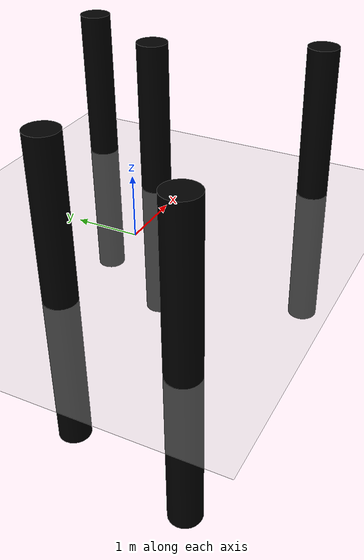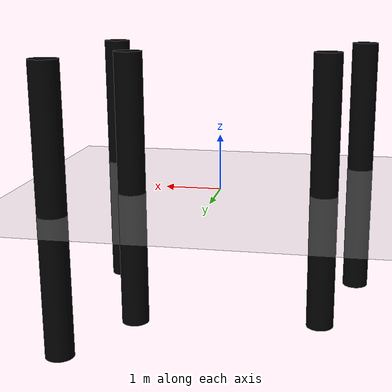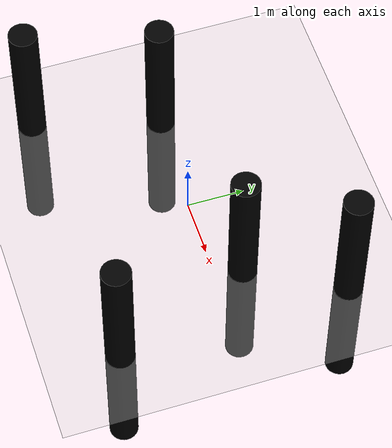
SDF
<?xml version="1.0"?>

<sdf version="1.6">
    <world name="world1">
        <gravity>0 0 0</gravity>
        <physics name="4ms" type="ignored">
            <max_step_size>0.004</max_step_size>
            <real_time_factor>1.0</real_time_factor>
        </physics>
        <plugin
            filename="ignition-gazebo-physics-system"
            name="ignition::gazebo::systems::Physics">
        </plugin>
        <plugin
            filename="ignition-gazebo-scene-broadcaster-system"
            name="ignition::gazebo::systems::SceneBroadcaster">
        </plugin>
        <plugin
            filename="ignition-gazebo-user-commands-system"
            name="ignition::gazebo::systems::UserCommands">
        </plugin>
        <plugin
            filename="ignition-gazebo-sensors-system"
            name="ignition::gazebo::systems::Sensors">
            <render_engine>ogre2</render_engine>
        </plugin>

        <include>
            <uri>model://ground_plane</uri>
        </include>
        <include>
            <uri>model://pole</uri>
            <name>pole1</name>
            <pose>1.53 0.47 0 0 0 0</pose>
        </include>
        <include>
            <uri>model://pole</uri>
            <name>pole2</name>
            <pose>-1.87 0.09 0 0 0 0</pose>
        </include>
        <include>
            <uri>model://pole</uri>
            <name>pole3</name>
            <pose>-2.49 -2.1 0 0 0 0</pose>
        </include>
        <include>
            <uri>model://pole</uri>
            <name>pole4</name>
            <pose>2.4 2.05 0 0 0 0</pose>
        </include>
        <include>
            <uri>model://pole</uri>
            <name>pole5</name>
            <pose>2.49 -1.97 0 0 0 0</pose>
        </include>

    </world>
</sdf>

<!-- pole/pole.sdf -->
<sdf version="1.9">
    <model name="pole">
        <link name="pole_link">

            <visual name='visual'>
                <geometry>
                    <cylinder>
                        <radius>0.25</radius>
                        <length>5.0</length>
                    </cylinder>
                </geometry>
                <material>
                    <diffuse>0 0 0 1</diffuse>
                </material>
            </visual>

            <inertial>
                <mass>0.005</mass>
                <inertia>
                    <ixx>8.33e-06</ixx>
                    <ixy>0</ixy>
                    <ixz>0</ixz>
                    <iyy>8.33e-06</iyy>
                    <iyz>0</iyz>
                    <izz>8.33e-06</izz>
                </inertia>
            </inertial>

        </link>
        <frame name="mount_point"/>

        <joint name="world_to_base_link=" type="fixed">
            <parent>world</parent>
            <child>pole_link</child>
        </joint>
    </model>
</sdf>
